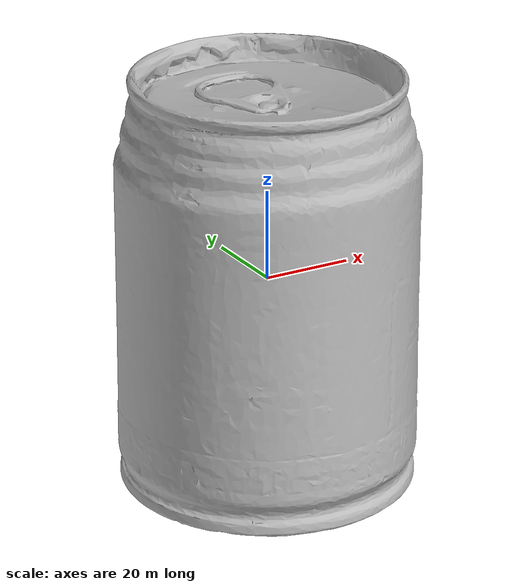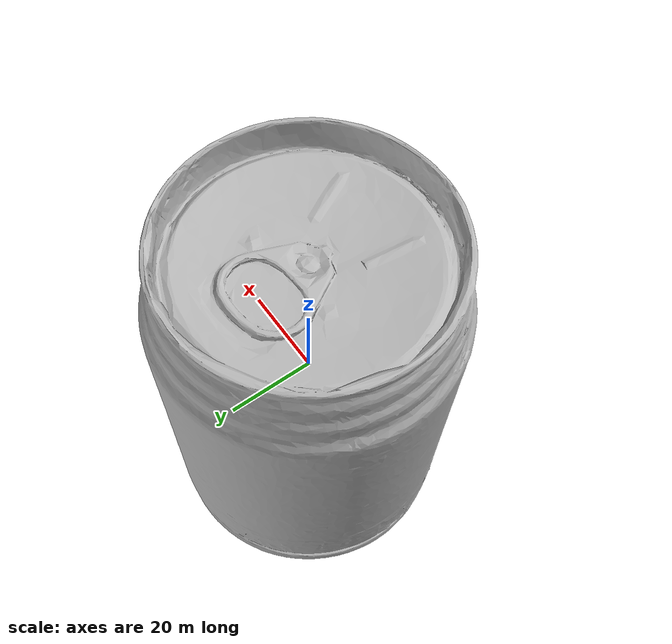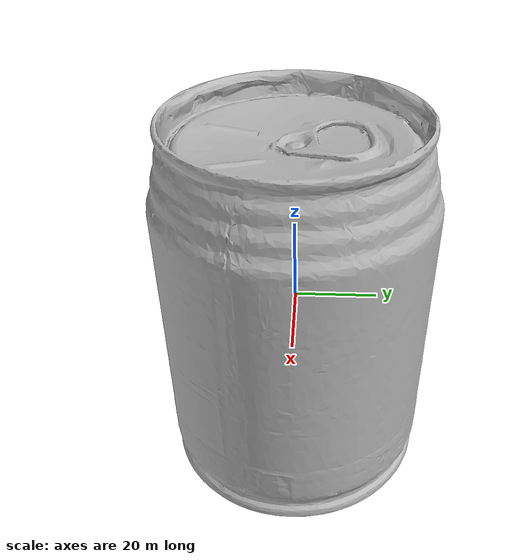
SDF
<sdf version="1.4">
 <world name="default">
  <light name="light1" type="point">
   <pose>0 0 1 0 0 0</pose>
   <diffuse>3 3 3 1</diffuse>
   <specular>3 3 3 1</specular>
  </light>
  <light name="light2" type="point">
   <pose>0 0.5 2 0 0 0</pose>
   <diffuse>1 1 1 1</diffuse>
   <specular>1 1 1 1</specular>
  </light>
  <light name="light3" type="point">
   <pose>0 0.5 2 0 0 0</pose>
   <diffuse>3 3 3 1</diffuse>
   <specular>3 3 3 1</specular>
  </light>
  <scene><ambient>0.7 0.7 0.7</ambient></scene>
  <model name="box2">
   <link name="link_box2">
    <collision name="default">
     <geometry>
      <mesh><uri>model://wooden_puzzle2/collision_meshes/collision.obj</uri><scale>1.0 1.0 1.0</scale></mesh>
     </geometry>
     <surface>
      <friction><ode><mu>0.5</mu><mu2>0.5</mu2></ode></friction>
      <contact><ode><max_vel>0</max_vel><min_depth>0.0001</min_depth><kp>1e8</kp></ode></contact>
     </surface>
    </collision>
    <visual name="default">
     <geometry>
      <mesh><uri>model://wooden_puzzle2/visual_meshes/visual.dae</uri><scale>1.0 1.0 1.0</scale></mesh>
     </geometry>
    </visual>
    <inertial>
     <mass>0.03464552015066147</mass>
     <pose>2.7402536943554878e-05 4.997663199901581e-05 6.587122334167361e-05 -0.1920274284601778 0.6112817660648215 -0.6338676817937987</pose>
     <inertia>
      <ixx>6.440233e-06</ixx>
      <iyy>6.6177017e-06</iyy>
      <izz>6.52356e-06</izz>
      <ixy>0</ixy>
      <ixz>0</ixz>
      <iyz>0</iyz>
     </inertia>
    </inertial>
   </link>
   <pose>0.2831791043281555 0.028973234817385674 0.01691773533821106 0.02084787592181087 0.0007217011555730621 1.615893759120787</pose>
  </model>
  <model name="box3">
   <link name="link_box3">
    <collision name="default">
     <geometry>
      <mesh><uri>model://wooden_puzzle1/collision_meshes/collision.obj</uri><scale>1.0 1.0 1.0</scale></mesh>
     </geometry>
     <surface>
      <friction><ode><mu>0.5</mu><mu2>0.5</mu2></ode></friction>
      <contact><ode><max_vel>0</max_vel><min_depth>0.0001</min_depth><kp>1e8</kp></ode></contact>
     </surface>
    </collision>
    <visual name="default">
     <geometry>
      <mesh><uri>model://wooden_puzzle1/visual_meshes/visual.dae</uri><scale>1.0 1.0 1.0</scale></mesh>
     </geometry>
    </visual>
    <inertial>
     <mass>0.03424873203039169</mass>
     <pose>-0.0001735068071866408 7.97226166469045e-05 -9.191554272547364e-05 -0.07784599296854997 -0.2636133645981781 -0.5528677830585703</pose>
     <inertia>
      <ixx>6.4618e-06</ixx>
      <iyy>6.3374077e-06</iyy>
      <izz>6.413012e-06</izz>
      <ixy>0</ixy>
      <ixz>0</ixz>
      <iyz>0</iyz>
     </inertia>
    </inertial>
   </link>
   <pose>0.2678489089012146 -0.194832444190979 0.016802025958895683 0.010512029799628038 -0.009455077431377738 -2.4640778525695852</pose>
  </model>
  <model name="can1">
   <link name="link_can1">
    <collision name="default">
     <geometry>
      <mesh><uri>model://pepsi/collision_meshes/collision.obj</uri><scale>1.0 1.0 1.0</scale></mesh>
     </geometry>
     <surface>
      <friction><ode><mu>0.5</mu><mu2>0.5</mu2></ode></friction>
      <contact><ode><max_vel>0</max_vel><min_depth>0.0001</min_depth><kp>1e8</kp></ode></contact>
     </surface>
    </collision>
    <visual name="default">
     <geometry><mesh><uri>model://pepsi/visual_meshes/visual.dae</uri><scale>1.0 1.0 1.0</scale></mesh></geometry>
    </visual>
    <inertial>
     <mass>0.3250696361064911</mass>
     <pose>-7.5590331107378e-05 2.99312814604491e-05 -0.0003384356386959553 -0.0010678660158137958 -0.0021735266966629516 0.5674177426725915</pose>
     <inertia>
      <ixx>0.0006476009</ixx>
      <iyy>0.0006471292</iyy>
      <izz>0.00013783273</izz>
      <ixy>0</ixy>
      <ixz>0</ixz>
      <iyz>0</iyz>
     </inertia>
    </inertial>
   </link>
   <pose>0.05834478512406349 0.07434161007404327 0.07449635118246078 -1.895329746593612e-05 2.2920477092912743e-06 -1.520916812057987</pose>
  </model>
  <model name="can2">
   <link name="link_can2">
    <collision name="default">
     <geometry>
      <mesh><uri>model://redbull/collision_meshes/collision.obj</uri><scale>1.0 1.0 1.0</scale></mesh>
     </geometry>
     <surface>
      <friction><ode><mu>0.5</mu><mu2>0.5</mu2></ode></friction>
      <contact><ode><max_vel>0</max_vel><min_depth>0.0001</min_depth><kp>1e8</kp></ode></contact>
     </surface>
    </collision>
    <visual name="default">
     <geometry>
      <mesh><uri>model://redbull/visual_meshes/visual.dae</uri><scale>1.0 1.0 1.0</scale></mesh>
     </geometry>
    </visual>
    <inertial>
     <mass>0.28235653042793274</mass>
     <pose>-2.2127058400656097e-05 -0.00012659600179176778 -0.0006860987632535398 0.0011377565977294822 -0.010800863454111471 0.5858141898730843</pose>
     <inertia>
      <ixx>0.0002654759</ixx>
      <iyy>0.0002657</iyy>
      <izz>0.00015754026</izz>
      <ixy>0</ixy>
      <ixz>0</ixz>
      <iyz>0</iyz>
     </inertia>
    </inertial>
   </link>
   <pose>0.023270316421985626 -0.10522761195898056 0.046385642141103745 -0.010489374898652188 0.007260598271679106 -2.6047721828778783</pose>
  </model>
  <physics type="ode">
   <max_contacts>50</max_contacts>
   <ode>
    <solver><type>quick</type><iters>75</iters></solver>
    <constraints>
     <contact_max_correcting_vel>0</contact_max_correcting_vel>
     <contact_surface_layer>0</contact_surface_layer>
    </constraints>
   </ode>
  </physics>
 </world>
</sdf>
